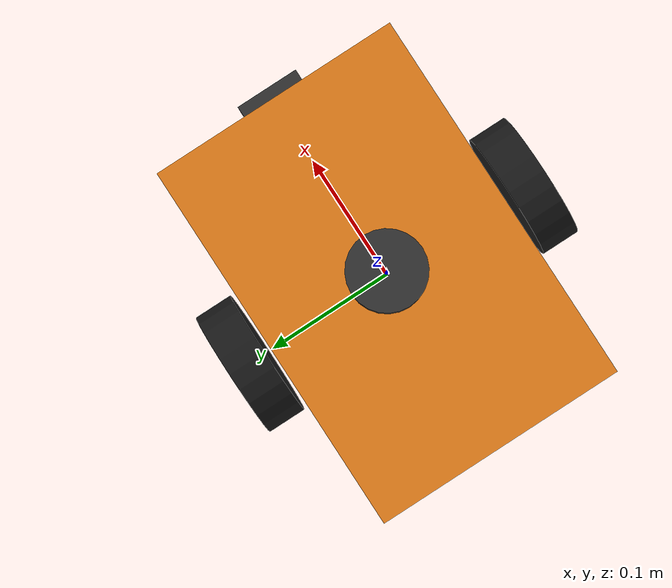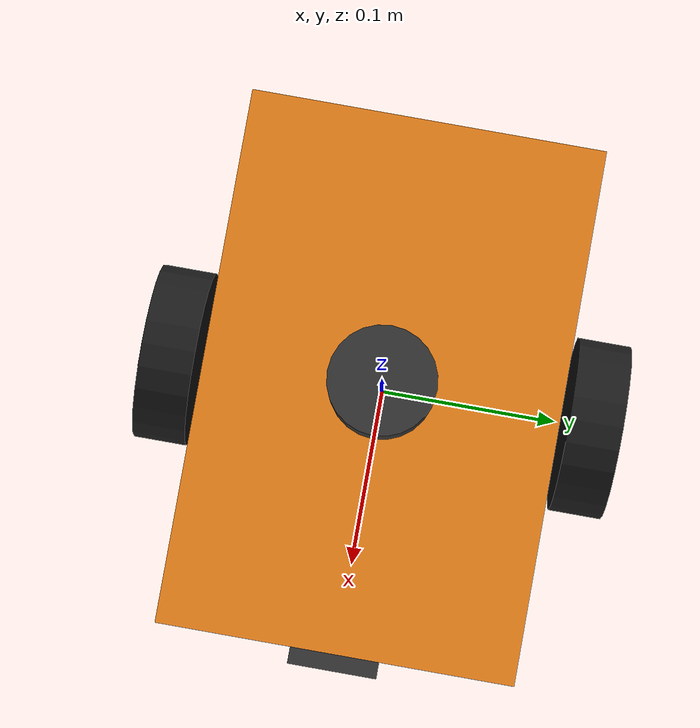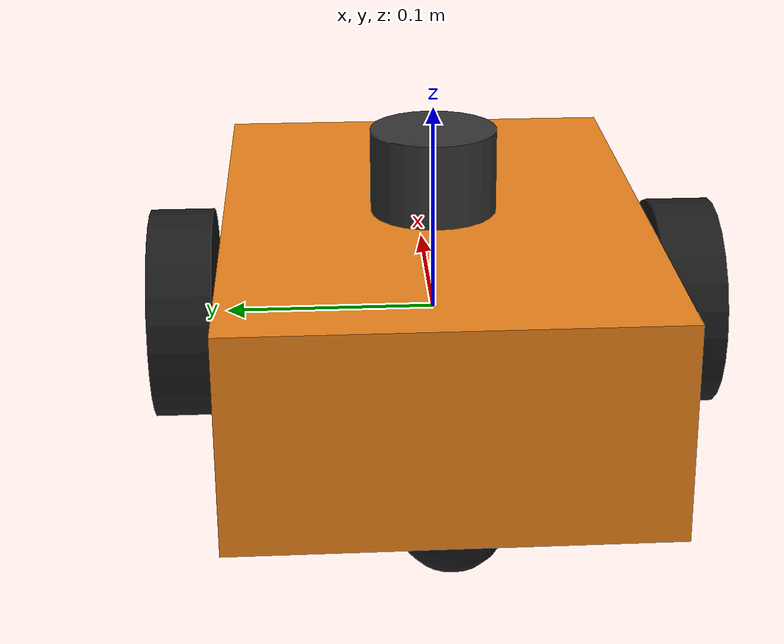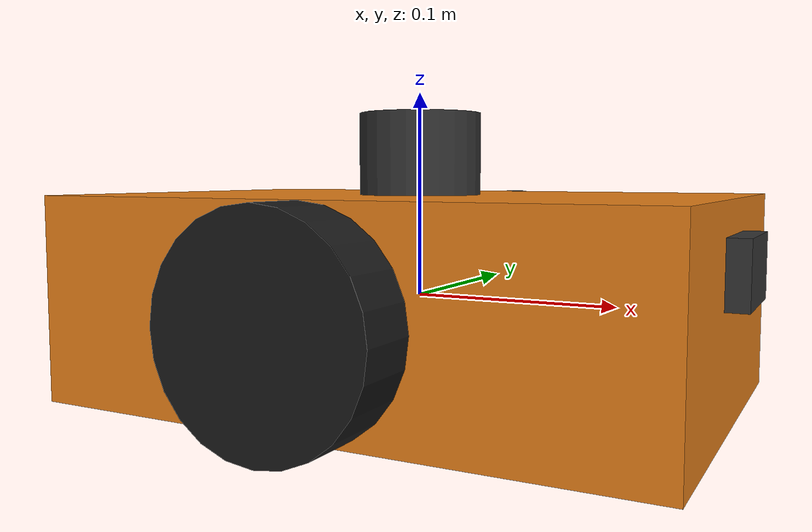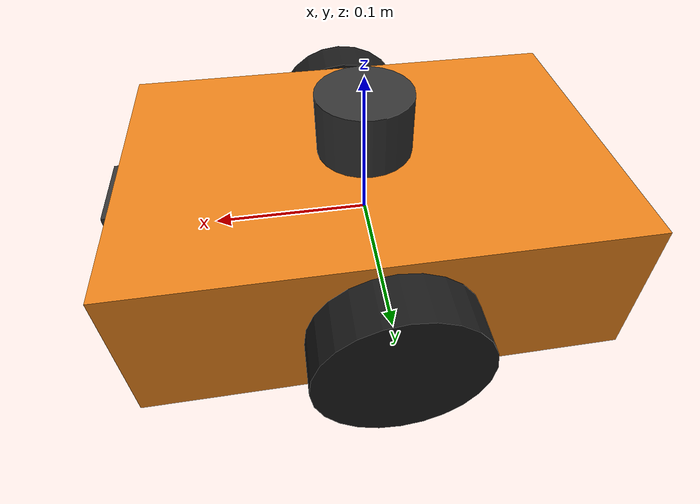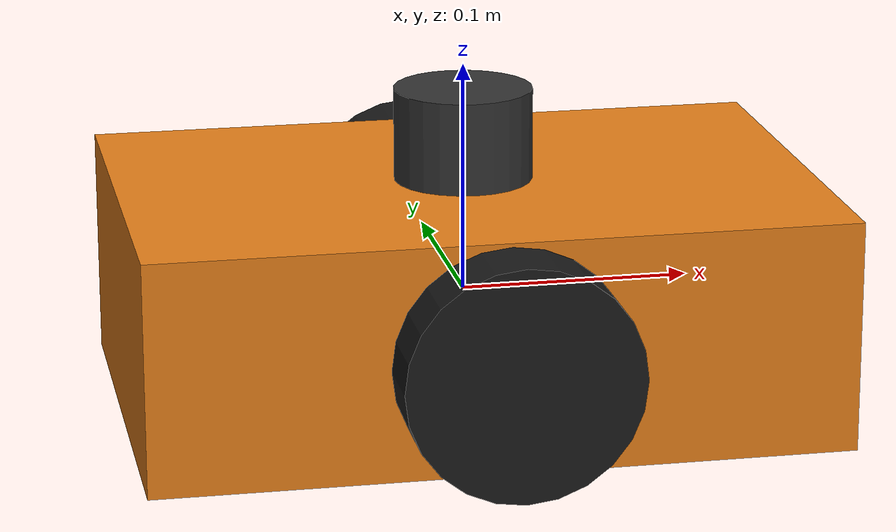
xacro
<?xml version="1.0"?>
<robot name="sensored_diffdrive" xmlns:xacro="http://www.ros.org/wiki/xacro">

  <xacro:property name="chassis_length" value="0.3"/>
  <xacro:property name="chassis_width" value="0.2"/>
  <xacro:property name="chassis_height" value="0.1"/>
  <xacro:property name="wheel_radius" value="0.05"/>
  <xacro:property name="wheel_width" value="0.03"/>
  <xacro:property name="wheel_separation" value="0.24"/>

  <link name="base_link">
    <visual>
      <geometry><box size="${chassis_length} ${chassis_width} ${chassis_height}"/></geometry>
      <material name="orange"><color rgba="0.9 0.5 0.1 1"/></material>
    </visual>
    <collision>
      <geometry><box size="${chassis_length} ${chassis_width} ${chassis_height}"/></geometry>
    </collision>
    <inertial>
      <mass value="2.0"/>
      <inertia ixx="0.02" ixy="0" ixz="0" iyy="0.03" iyz="0" izz="0.04"/>
    </inertial>
  </link>

  <link name="left_wheel">
    <visual>
      <origin xyz="0 0 0" rpy="1.5708 0 0"/>
      <geometry><cylinder radius="${wheel_radius}" length="${wheel_width}"/></geometry>
      <material name="black"><color rgba="0.1 0.1 0.1 1"/></material>
    </visual>
    <collision>
      <origin xyz="0 0 0" rpy="1.5708 0 0"/>
      <geometry><cylinder radius="${wheel_radius}" length="${wheel_width}"/></geometry>
    </collision>
    <inertial>
      <mass value="0.2"/>
      <inertia ixx="0.0005" ixy="0" ixz="0" iyy="0.0005" iyz="0" izz="0.0005"/>
    </inertial>
  </link>

  <joint name="left_wheel_joint" type="continuous">
    <parent link="base_link"/>
    <child link="left_wheel"/>
    <origin xyz="0 ${wheel_separation/2} -${wheel_radius - chassis_height/2}" rpy="0 0 0"/>
    <axis xyz="0 1 0"/>
  </joint>

  <link name="right_wheel">
    <visual>
      <origin xyz="0 0 0" rpy="1.5708 0 0"/>
      <geometry><cylinder radius="${wheel_radius}" length="${wheel_width}"/></geometry>
      <material name="black"><color rgba="0.1 0.1 0.1 1"/></material>
    </visual>
    <collision>
      <origin xyz="0 0 0" rpy="1.5708 0 0"/>
      <geometry><cylinder radius="${wheel_radius}" length="${wheel_width}"/></geometry>
    </collision>
    <inertial>
      <mass value="0.2"/>
      <inertia ixx="0.0005" ixy="0" ixz="0" iyy="0.0005" iyz="0" izz="0.0005"/>
    </inertial>
  </link>

  <joint name="right_wheel_joint" type="continuous">
    <parent link="base_link"/>
    <child link="right_wheel"/>
    <origin xyz="0 -${wheel_separation/2} -${wheel_radius - chassis_height/2}" rpy="0 0 0"/>
    <axis xyz="0 1 0"/>
  </joint>

  <link name="caster_wheel">
    <visual>
      <geometry><sphere radius="0.025"/></geometry>
      <material name="black"><color rgba="0.1 0.1 0.1 1"/></material>
    </visual>
    <collision>
      <geometry><sphere radius="0.025"/></geometry>
    </collision>
    <inertial>
      <mass value="0.05"/>
      <inertia ixx="0.0001" ixy="0" ixz="0" iyy="0.0001" iyz="0" izz="0.0001"/>
    </inertial>
  </link>

  <joint name="caster_joint" type="fixed">
    <parent link="base_link"/>
    <child link="caster_wheel"/>
    <origin xyz="-0.12 0 -${chassis_height/2}" rpy="0 0 0"/>
  </joint>

  <gazebo>
    <plugin filename="gz-sim-diff-drive-system" name="gz::sim::systems::DiffDrive">
      <left_joint>left_wheel_joint</left_joint>
      <right_joint>right_wheel_joint</right_joint>
      <wheel_separation>${wheel_separation}</wheel_separation>
      <wheel_radius>${wheel_radius}</wheel_radius>
      <topic>cmd_vel</topic>
      <odom_topic>odom</odom_topic>
      <frame_id>odom</frame_id>
      <child_frame_id>base_link</child_frame_id>
    </plugin>
    <plugin filename="gz-sim-joint-state-publisher-system" name="gz::sim::systems::JointStatePublisher"/>
  </gazebo>

  <!-- === New in this chapter: sensors === -->

  <!-- Camera: mounted at the front of the chassis, facing forward (+X). -->
  <link name="camera_link">
    <visual>
      <geometry><box size="0.02 0.05 0.03"/></geometry>
      <material name="dark_gray"><color rgba="0.2 0.2 0.2 1"/></material>
    </visual>
    <collision>
      <geometry><box size="0.02 0.05 0.03"/></geometry>
    </collision>
    <inertial>
      <mass value="0.05"/>
      <inertia ixx="0.00002" ixy="0" ixz="0" iyy="0.00002" iyz="0" izz="0.00002"/>
    </inertial>
  </link>

  <joint name="camera_joint" type="fixed">
    <parent link="base_link"/>
    <child link="camera_link"/>
    <origin xyz="${chassis_length/2} 0 0.02" rpy="0 0 0"/>
  </joint>

  <link name="camera_optical_frame"/>
  <joint name="camera_optical_joint" type="fixed">
    <parent link="camera_link"/>
    <child link="camera_optical_frame"/>
    <!-- roll=-90deg, yaw=-90deg (in radians: -1.5708) rotates robot-frame
         (X-forward, Z-up) into optical-frame (Z-forward, Y-down). -->
    <origin xyz="0 0 0" rpy="-1.5708 0 -1.5708"/>
  </joint>

  <gazebo reference="camera_link">
    <sensor type="camera" name="front_camera">
      <update_rate>30</update_rate>
      <camera>
        <horizontal_fov>1.396</horizontal_fov> <!-- ~80 degrees -->
        <image><width>640</width><height>480</height><format>R8G8B8</format></image>
        <clip><near>0.05</near><far>20.0</far></clip>
      </camera>
      <!-- optical_frame_id tells the plugin to stamp published Image
           messages with camera_optical_frame, not camera_link. -->
      <optical_frame_id>camera_optical_frame</optical_frame_id>
      <topic>camera/image_raw</topic>
    </sensor>
  </gazebo>

  <!-- 2D Lidar: mounted on top of the chassis. -->
  <link name="lidar_link">
    <visual>
      <geometry><cylinder radius="0.03" length="0.04"/></geometry>
      <material name="dark_gray"><color rgba="0.2 0.2 0.2 1"/></material>
    </visual>
    <collision>
      <geometry><cylinder radius="0.03" length="0.04"/></geometry>
    </collision>
    <inertial>
      <mass value="0.1"/>
      <inertia ixx="0.00005" ixy="0" ixz="0" iyy="0.00005" iyz="0" izz="0.00005"/>
    </inertial>
  </link>

  <joint name="lidar_joint" type="fixed">
    <parent link="base_link"/>
    <child link="lidar_link"/>
    <origin xyz="0 0 ${chassis_height/2 + 0.02}" rpy="0 0 0"/>
  </joint>

  <gazebo reference="lidar_link">
    <sensor type="gpu_lidar" name="lidar">
      <update_rate>10</update_rate>
      <lidar>
        <scan>
          <horizontal>
            <samples>360</samples>
            <min_angle>-3.14159</min_angle>
            <max_angle>3.14159</max_angle>
          </horizontal>
        </scan>
        <range><min>0.1</min><max>12.0</max></range>
      </lidar>
      <topic>scan</topic>
    </sensor>
  </gazebo>

  <!-- IMU: mounted at the chassis center (no meaningful offset needed —
       an IMU measures the motion of whatever it's rigidly attached to). -->
  <link name="imu_link">
    <visual>
      <geometry><box size="0.02 0.02 0.01"/></geometry>
      <material name="dark_gray"><color rgba="0.2 0.2 0.2 1"/></material>
    </visual>
    <collision>
      <geometry><box size="0.02 0.02 0.01"/></geometry>
    </collision>
    <inertial>
      <mass value="0.02"/>
      <inertia ixx="0.00001" ixy="0" ixz="0" iyy="0.00001" iyz="0" izz="0.00001"/>
    </inertial>
  </link>

  <joint name="imu_joint" type="fixed">
    <parent link="base_link"/>
    <child link="imu_link"/>
    <origin xyz="0 0 0.01" rpy="0 0 0"/>
  </joint>

  <gazebo reference="imu_link">
    <sensor type="imu" name="imu">
      <update_rate>100</update_rate>
      <topic>imu</topic>
      <imu>
        <!-- Small Gaussian noise on each axis — a perfect noiseless IMU
             is unrealistic and would let perception code get away with
             assumptions that break on real hardware. -->
        <angular_velocity>
          <x><noise type="gaussian"><mean>0.0</mean><stddev>0.005</stddev></noise></x>
          <y><noise type="gaussian"><mean>0.0</mean><stddev>0.005</stddev></noise></y>
          <z><noise type="gaussian"><mean>0.0</mean><stddev>0.005</stddev></noise></z>
        </angular_velocity>
        <linear_acceleration>
          <x><noise type="gaussian"><mean>0.0</mean><stddev>0.02</stddev></noise></x>
          <y><noise type="gaussian"><mean>0.0</mean><stddev>0.02</stddev></noise></y>
          <z><noise type="gaussian"><mean>0.0</mean><stddev>0.02</stddev></noise></z>
        </linear_acceleration>
      </imu>
    </sensor>
  </gazebo>

</robot>
